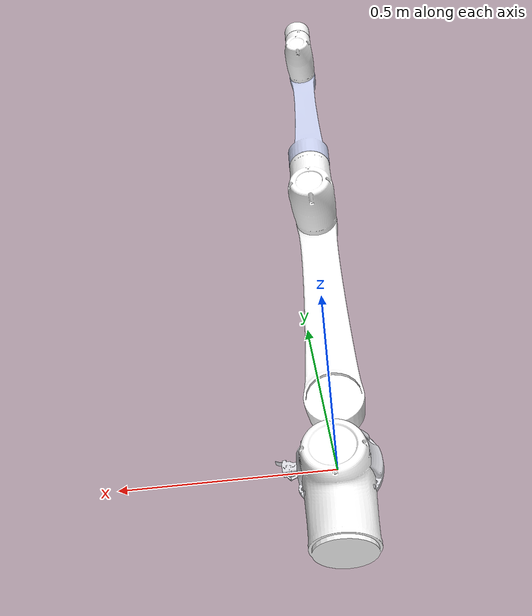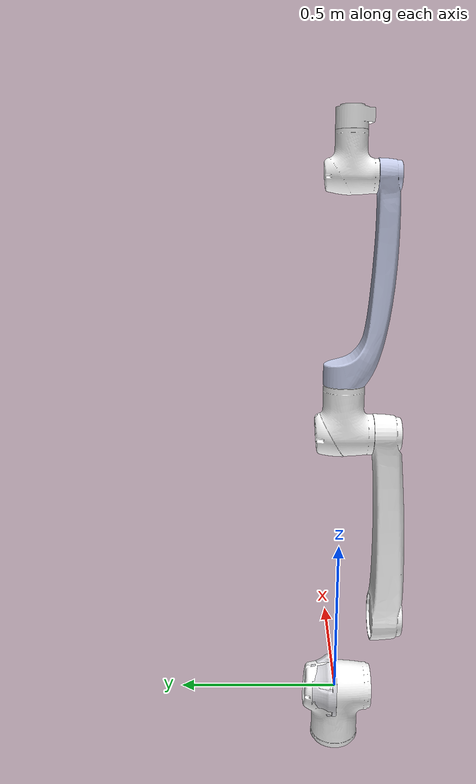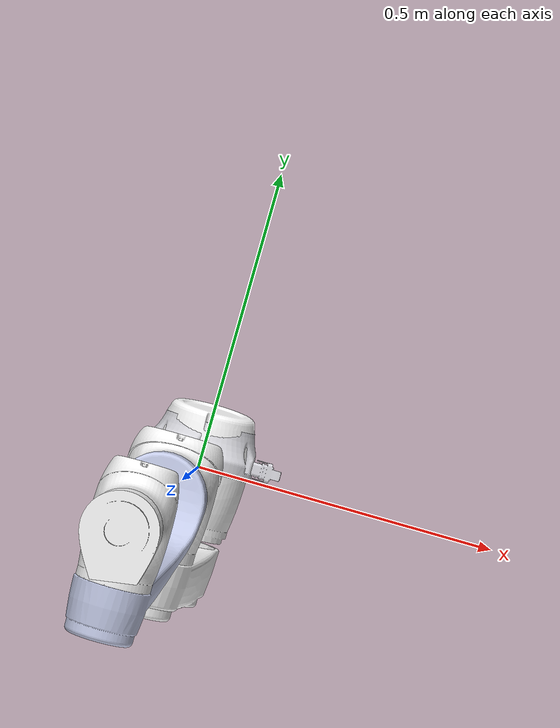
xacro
<robot
  name="elfin10_l" xmlns:xacro="http://www.ros.org/wiki/xacro">

  <xacro:include filename="$(find elfin_description)/urdf/materials.xacro" />

  <xacro:include filename="$(find elfin_description)/urdf/elfin_robot.gazebo" />

  <xacro:include filename="$(find elfin_description)/urdf/elfin_transmission.xacro" />

  <xacro:property name="coef" value="0.000000001"/>

  <link name="world" />

  <joint name="world_base" type="fixed">
    <origin
      xyz="0 0 0"
      rpy="0 0 0" />
    <parent
      link="world" />
    <child
      link="elfin_base_link" />
  </joint>

  <link name="elfin_base_link" />

  <joint name="elfin_base_joint" type="fixed">
    <origin
      xyz="0 0 0"
      rpy="1.570797 ${1.570797*2} ${1.570797*2}" />

    <parent
      link="elfin_base_link" />
    <child
      link="elfin_base" />
  </joint>
  <link
    name="elfin_base">
    <inertial>
        <origin
        xyz="0.00032861 -0.02554 -0.00034505"
        rpy="0 0 0" />
      <mass
        value="4.1802" />
      <inertia
        ixx="0.0075485"
        ixy="1.0006E-05"
        ixz="-4.3994E-05"
        iyy="0.014632"
        iyz="-0.00010482"
        izz="0.0084243" />

    </inertial>
    <visual>
      <origin
        xyz="0 0 0"
        rpy="0 0 0" />
      <geometry>
        <mesh
          filename="package://elfin_description/meshes/elfin10_l/elfin_base.STL" />
      </geometry>
      <material
        name="">
        <color
          rgba="0.86667 0.86667 0.8902 1" />
      </material>
    </visual>
    <collision>
      <origin
        xyz="0 0 0"
        rpy="0 0 0" />
      <geometry>
        <mesh
          filename="package://elfin_description/meshes/elfin10_l/elfin_base.STL" />
      </geometry>
    </collision>
  </link>
  <link
    name="elfin_link1">
    <inertial>
        <origin
        xyz="2.6857E-05 -0.029266 0.1919"
        rpy="0 0 0" />
      <mass
        value="16.609" />
      <inertia
        ixx="0.034331"
        ixy="-3.4482E-05"
        ixz="-2.9633E-05"
        iyy="0.045424"
        iyz="0.0022102"
        izz="0.039605" />
    </inertial>
    <visual>
      <origin
        xyz="0 0 0"
        rpy="0 0 0" />
      <geometry>
        <mesh
          filename="package://elfin_description/meshes/elfin10_l/elfin_link1.STL" />
      </geometry>
      <material
        name="">
        <color
          rgba="1 1 1 1" />
      </material>
    </visual>
    <collision>
      <origin
        xyz="0 0 0"
        rpy="0 0 0" />
      <geometry>
        <mesh
          filename="package://elfin_description/meshes/elfin10_l/elfin_link1.STL" />
      </geometry>
    </collision>
  </link>
  <joint
    name="elfin_joint1"
    type="revolute">
    <origin
      xyz="0 0 0"
      rpy="1.5708 0 0" />
    <parent
      link="elfin_base" />
    <child
      link="elfin_link1" />
    <axis
      xyz="0 0 1" />
    <limit
      lower="-3.14"
      upper="3.14"
      effort="420"
      velocity="1.57" />
  </joint>
  <link
    name="elfin_link2">
    <inertial>
         <origin
        xyz="1.4387E-05 0.26969 0.14233"
        rpy="0 0 0" />
      <mass
        value="8.7235" />
      <inertia
        ixx="0.24536"
        ixy="-2.4916E-05"
        ixz="-5.9253E-06"
        iyy="0.015887"
        iyz="0.0081398"
        izz="0.25053" />
    </inertial>
    <visual>
      <origin
        xyz="0 0 0"
        rpy="0 0 0" />
      <geometry>
        <mesh
          filename="package://elfin_description/meshes/elfin10_l/elfin_link2.STL" />
      </geometry>
      <material
        name="">
        <color
          rgba="1 1 1 1" />
      </material>
    </visual>
    <collision>
      <origin
        xyz="0 0 0"
        rpy="0 0 0" />
      <geometry>
        <mesh
          filename="package://elfin_description/meshes/elfin10_l/elfin_link2.STL" />
      </geometry>
    </collision>
  </link>
  <joint
    name="elfin_joint2"
    type="revolute">
    <origin
      xyz="0 0 0.26"
      rpy="1.5708 0 0" />
    <parent
      link="elfin_link1" />
    <child
      link="elfin_link2" />
    <axis
      xyz="0 0 1" />
    <limit
      lower="-2.35"
      upper="2.35"
      effort="420"
      velocity="1.57" />
  </joint>
  <link
    name="elfin_link3">
    <inertial>
        <origin
        xyz="0.053847 -1.0028E-05 -0.023648"
        rpy="0 0 0" />
      <mass
        value="8.28817" />
      <inertia
        ixx="0.013498"
        ixy="5.7296E-06"
        ixz="-0.00075857"
        iyy="0.011546"
        iyz="4.255E-06"
        izz="0.015027" />
    </inertial>
    <visual>
      <origin
        xyz="0 0 0"
        rpy="0 0 0" />
      <geometry>
        <mesh
          filename="package://elfin_description/meshes/elfin10_l/elfin_link3.STL" />
      </geometry>
      <material
        name="">
        <color
          rgba="1 1 1 1" />
      </material>
    </visual>
    <collision>
      <origin
        xyz="0 0 0"
        rpy="0 0 0" />
      <geometry>
        <mesh
          filename="package://elfin_description/meshes/elfin10_l/elfin_link3.STL" />
      </geometry>
    </collision>
  </link>
  <joint
    name="elfin_joint3"
    type="revolute">
    <origin
      xyz="0 0.6 0"
      rpy="3.1416 0 1.5708" />
    <parent
      link="elfin_link2" />
    <child
      link="elfin_link3" />
    <axis
      xyz="0 0 1" />
    <limit
      lower="-2.61"
      upper="2.61"
      effort="200"
      velocity="1.57" />
  </joint>
  <link
    name="elfin_link4">
    <inertial>
         <origin
        xyz="2.0335E-05 -0.067673 0.38361"
        rpy="0 0 0" />
      <mass
        value="4.09857" />
      <inertia
        ixx="0.091784"
        ixy="1.3519E-07"
        ixz="-1.4394E-05"
        iyy="0.08887"
        iyz="0.014085"
        izz="0.0084778" />
    </inertial>
    <visual>
      <origin
        xyz="0 0 0"
        rpy="0 0 0" />
      <geometry>
        <mesh
          filename="package://elfin_description/meshes/elfin10_l/elfin_link4.STL" />
      </geometry>
      <material
        name="">
        <color
          rgba="0.792156862745098 0.819607843137255 0.933333333333333 1" />
      </material>
    </visual>
    <collision>
      <origin
        xyz="0 0 0"
        rpy="0 0 0" />
      <geometry>
        <mesh
          filename="package://elfin_description/meshes/elfin10_l/elfin_link4.STL" />
      </geometry>
    </collision>
  </link>
  <joint
    name="elfin_joint4"
    type="revolute">
    <origin
      xyz="0 0 0"
      rpy="1.5708 0 1.5708" />
    <parent
      link="elfin_link3" />
    <child
      link="elfin_link4" />
    <axis
      xyz="0 0 1" />
    <limit
      lower="-3.14"
      upper="3.14"
      effort="200"
      velocity="1.57" />
  </joint>
  <link
    name="elfin_link5">
    <inertial>
        <origin
        xyz="-2.5145E-05 -0.039561 -0.01936"
        rpy="0 0 0" />
      <mass
        value="3.74304" />
      <inertia
        ixx="0.0027397"
        ixy="-7.4484E-06"
        ixz="1.5721E-05"
        iyy="0.0030296"
        iyz="0.00020143"
        izz="0.0033511" />
    </inertial>
    <visual>
      <origin
        xyz="0 0 0"
        rpy="0 0 0" />
      <geometry>
        <mesh
          filename="package://elfin_description/meshes/elfin10_l/elfin_link5.STL" />
      </geometry>
      <material
        name="">
        <color
          rgba="1 1 1 1" />
      </material>
    </visual>
    <collision>
      <origin
        xyz="0 0 0"
        rpy="0 0 0" />
      <geometry>
        <mesh
          filename="package://elfin_description/meshes/elfin10_l/elfin_link5.STL" />
      </geometry>
    </collision>
  </link>
  <joint
    name="elfin_joint5"
    type="revolute">
    <origin
      xyz="0 0 0.7"
      rpy="-1.5708 0 0" />
    <parent
      link="elfin_link4" />
    <child
      link="elfin_link5" />
    <axis
      xyz="0 0 1" />
    <limit
      lower="-2.56"
      upper="2.56"
      effort="69"
      velocity="1.57" />
  </joint>
  <link
    name="elfin_link6">
    <inertial>
        <origin
        xyz="0.00091682 -0.0048568 0.14017"
        rpy="0 0 0" />
      <mass
        value="0.82406" />
      <inertia
        ixx="0.00032663"
        ixy="-1.3657E-07"
        ixz="-2.3073E-09"
        iyy="0.00032085"
        iyz="-5.7935E-06"
        izz="0.00056343" />
    </inertial>
    <visual>
      <origin
        xyz="0 0 0"
        rpy="0 0 0" />
      <geometry>
        <mesh
          filename="package://elfin_description/meshes/elfin10_l/elfin_link6.STL" />
      </geometry>
      <material
        name="">
        <color
          rgba="1 1 1 1" />
      </material>
    </visual>
    <collision>
      <origin
        xyz="0 0 0"
        rpy="0 0 0" />
      <geometry>
        <mesh
          filename="package://elfin_description/meshes/elfin10_l/elfin_link6.STL" />
      </geometry>
    </collision>
  </link>
  <joint
    name="elfin_joint6"
    type="revolute">
    <origin
      xyz="0 0 0"
      rpy="1.5708 0 0" />
    <parent
      link="elfin_link5" />
    <child
      link="elfin_link6" />
    <axis
      xyz="0 0 1" />
    <limit
      lower="-3.14"
      upper="3.14"
      effort="69"
      velocity="1.57" />
  </joint>
  <link name="elfin_end_link"/>
  <joint
    name="elfin_end_joint"
    type="fixed">
    <origin
      xyz="0 0 0.168"
      rpy="0 0 0" />
    <parent
      link="elfin_link6" />
    <child
      link="elfin_end_link" />
    <axis
      xyz="0 0 0" />
  </joint>

 <link name="elfin_dummy_gripper"/>

  <joint name="elfin_dummy_joint" type="fixed">
    <origin
      xyz="0 0.109 0"
      rpy="-1.5708 -1.5708 0" />
    <parent
      link="elfin_link6" />
    <child
      link="elfin_dummy_gripper" />
  </joint>

</robot>
